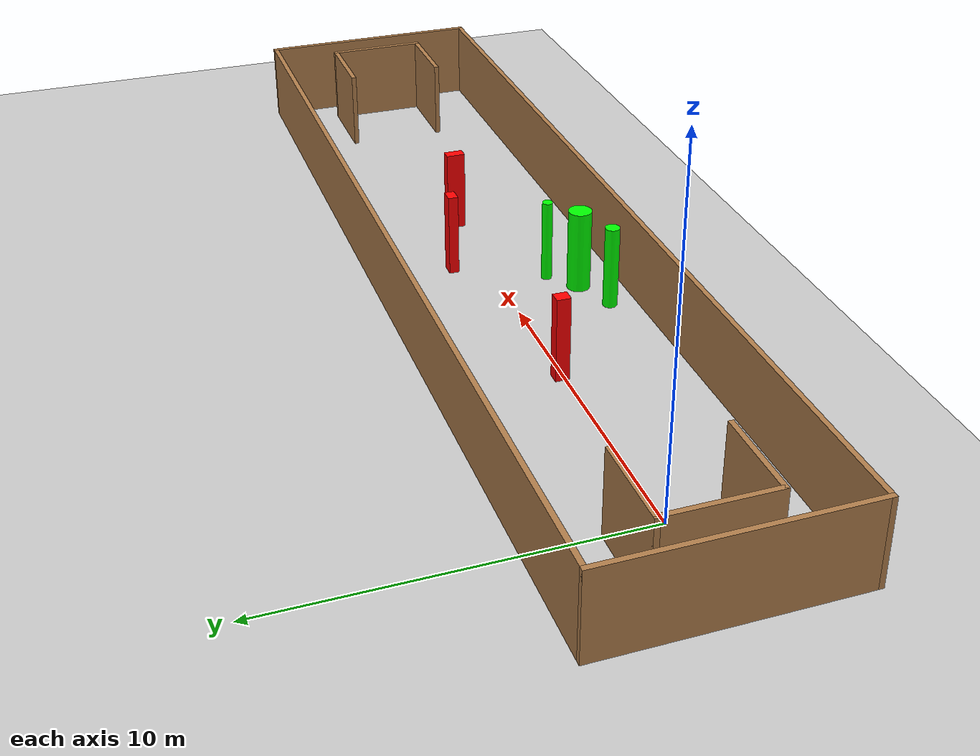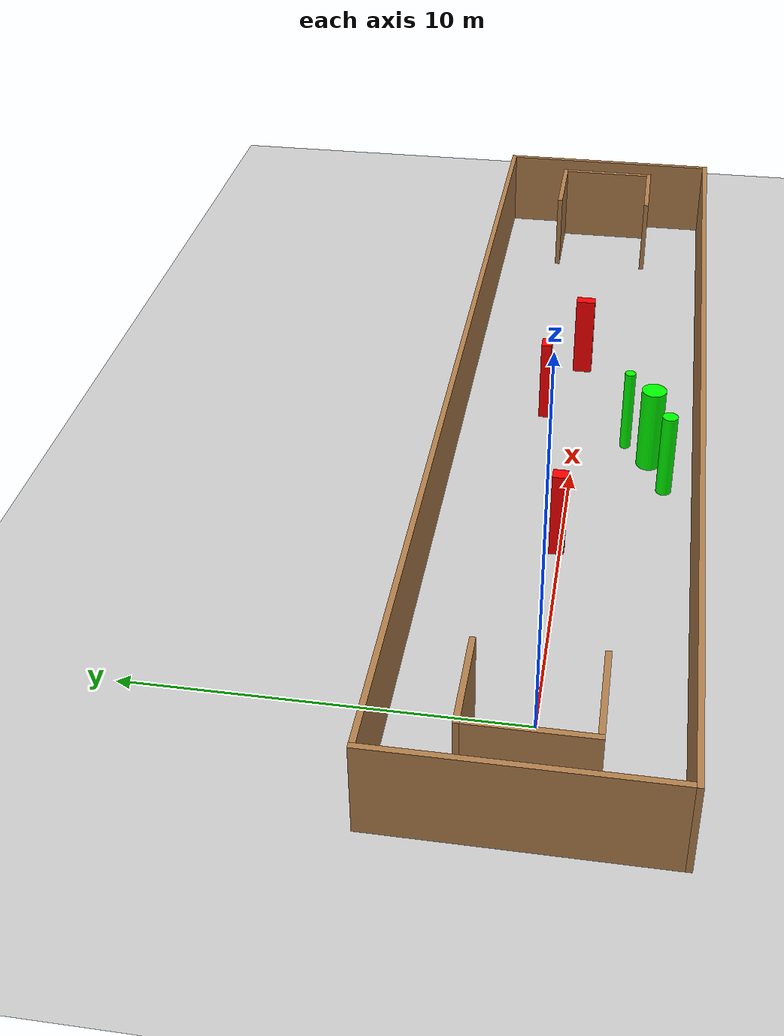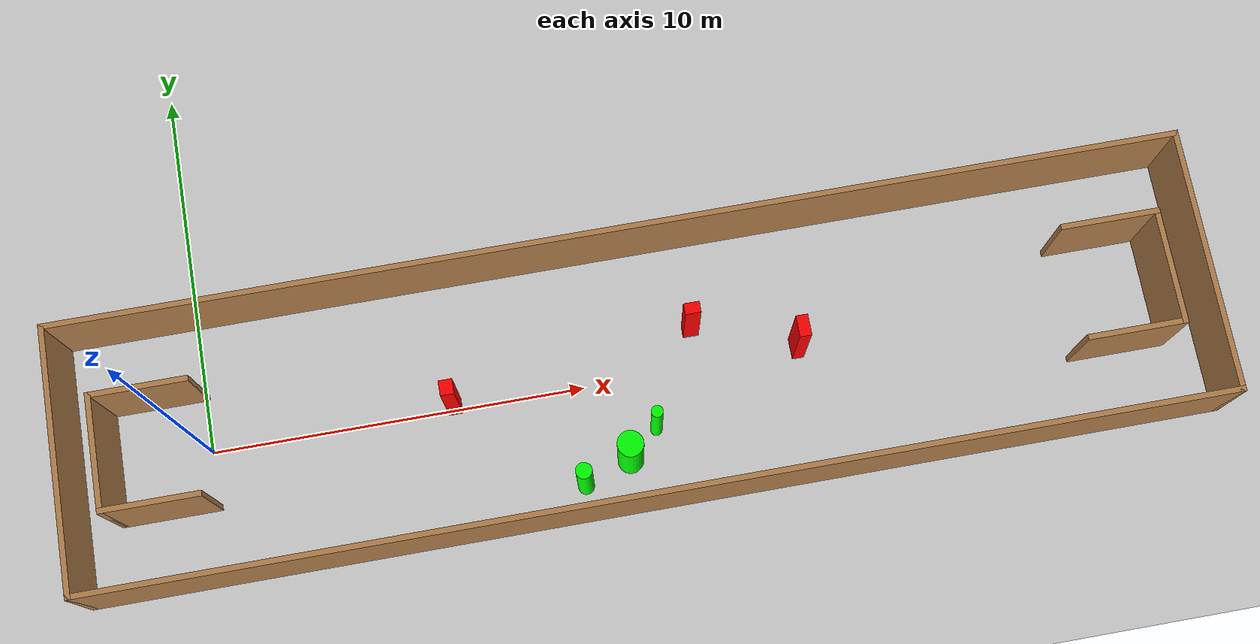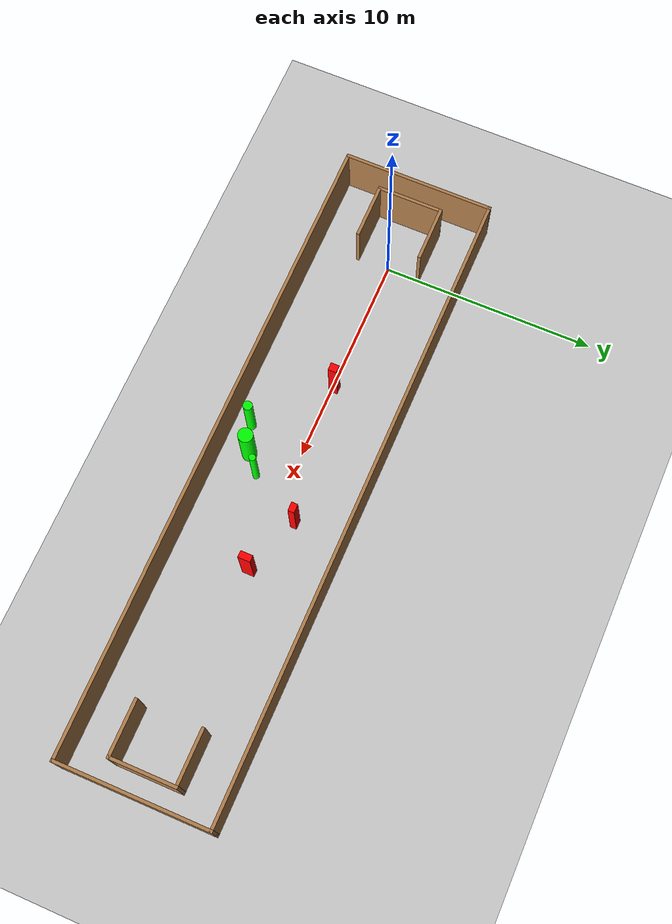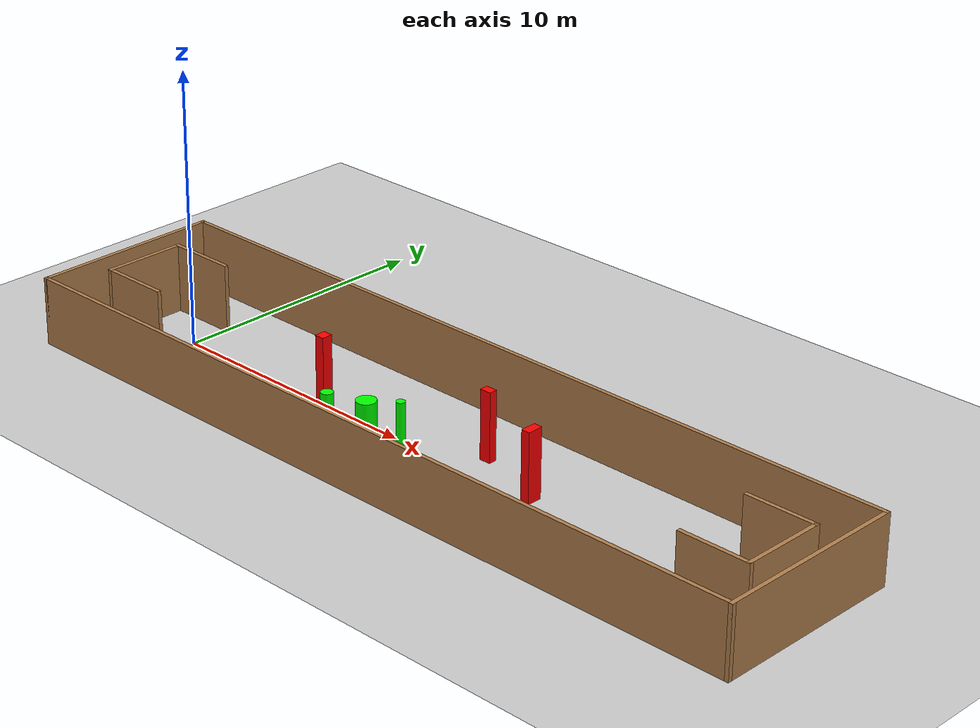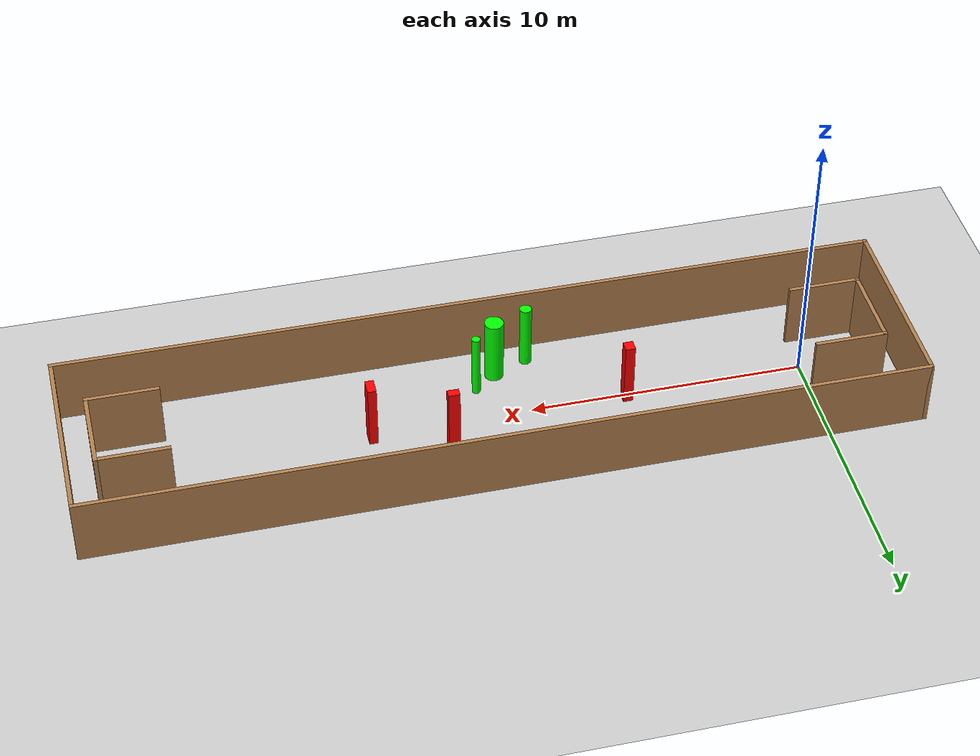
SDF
<sdf version="1.7">
 <world name="default">
  <light name="sun" type="directional">
   <pose>0 0 10 0 -0 0</pose>
   <diffuse>0.8 0.8 0.8 1</diffuse>
   <specular>0.2 0.2 0.2 1</specular>
   <attenuation>
    <range>1000</range>
    <constant>0.9</constant>
    <linear>0.01</linear>
    <quadratic>0.001</quadratic>
   </attenuation>
   <direction>-0.5 0.1 -0.9</direction>
   <spot><inner_angle>0</inner_angle><outer_angle>0</outer_angle><falloff>0</falloff></spot>
  </light>
  <model name="ground_plane">
   <static>1</static>
   <link name="link">
    <collision name="collision">
     <geometry><plane><normal>0 0 1</normal><size>100 100</size></plane></geometry>
     <surface>
      <contact><collide_bitmask>65535</collide_bitmask></contact>
      <friction><ode><mu>100</mu><mu2>50</mu2></ode></friction>
     </surface>
    </collision>
    <visual name="visual">
     <cast_shadows>0</cast_shadows>
     <geometry><plane><normal>0 0 1</normal><size>100 100</size></plane></geometry>
     <material>
      <script><uri>file://media/materials/scripts/gazebo.material</uri><name>Gazebo/Grey</name></script>
     </material>
    </visual>
   </link>
  </model>
  <gravity>0 0 -9.8</gravity>
  <magnetic_field>6e-06 2.3e-05 -4.2e-05</magnetic_field>
  <atmosphere type="adiabatic"/>
  <physics type="ode">
   <max_step_size>0.001</max_step_size>
   <real_time_factor>1</real_time_factor>
   <real_time_update_rate>1000</real_time_update_rate>
  </physics>
  <scene><ambient>0.4 0.4 0.4 1</ambient><background>0.7 0.7 0.7 1</background><shadows>1</shadows></scene>
  <spherical_coordinates>
   <surface_model>EARTH_WGS84</surface_model>
   <latitude_deg>0</latitude_deg>
   <longitude_deg>0</longitude_deg>
   <elevation>0</elevation>
   <heading_deg>0</heading_deg>
  </spherical_coordinates>
  <model name="my_base_walls">
   <link name="Wall_0">
    <collision name="Wall_0_Collision">
     <geometry><box><size>7.15 0.15 2.5</size></box></geometry>
     <pose>0 0 1.25 0 -0 0</pose>
    </collision>
    <visual name="Wall_0_Visual">
     <pose>0 0 1.25 0 -0 0</pose>
     <geometry><box><size>7.15 0.15 2.5</size></box></geometry>
     <material>
      <script><uri>file://media/materials/scripts/gazebo.material</uri><name>Gazebo/Wood</name></script>
      <ambient>1 1 1 1</ambient>
     </material>
     <meta><layer>0</layer></meta>
    </visual>
    <pose>-15 0 0 0 -0 1.5708</pose>
   </link>
   <link name="Wall_10">
    <collision name="Wall_10_Collision">
     <geometry><box><size>2.65 0.15 2.5</size></box></geometry>
     <pose>0 0 1.25 0 -0 0</pose>
    </collision>
    <visual name="Wall_10_Visual">
     <pose>0 0 1.25 0 -0 0</pose>
     <geometry><box><size>2.65 0.15 2.5</size></box></geometry>
     <material>
      <script><uri>file://media/materials/scripts/gazebo.material</uri><name>Gazebo/Wood</name></script>
      <ambient>1 1 1 1</ambient>
     </material>
     <meta><layer>0</layer></meta>
    </visual>
    <pose>-12.75 -1.5 0 0 -0 0</pose>
   </link>
   <link name="Wall_12">
    <collision name="Wall_12_Collision">
     <geometry><box><size>2.65 0.15 2.5</size></box></geometry>
     <pose>0 0 1.25 0 -0 0</pose>
    </collision>
    <visual name="Wall_12_Visual">
     <pose>0 0 1.25 0 -0 0</pose>
     <geometry><box><size>2.65 0.15 2.5</size></box></geometry>
     <material>
      <script><uri>file://media/materials/scripts/gazebo.material</uri><name>Gazebo/Wood</name></script>
      <ambient>1 1 1 1</ambient>
     </material>
     <meta><layer>0</layer></meta>
    </visual>
    <pose>-12.75 1.5 0 0 -0 0</pose>
   </link>
   <link name="Wall_14">
    <collision name="Wall_14_Collision">
     <geometry><box><size>3.15 0.15 2.5</size></box></geometry>
     <pose>0 0 1.25 0 -0 0</pose>
    </collision>
    <visual name="Wall_14_Visual">
     <pose>0 0 1.25 0 -0 0</pose>
     <geometry><box><size>3.15 0.15 2.5</size></box></geometry>
     <material>
      <script><uri>file://media/materials/scripts/gazebo.material</uri><name>Gazebo/Wood</name></script>
      <ambient>1 1 1 1</ambient>
     </material>
     <meta><layer>0</layer></meta>
    </visual>
    <pose>14 0 0 0 -0 -1.5708</pose>
   </link>
   <link name="Wall_15">
    <collision name="Wall_15_Collision">
     <geometry><box><size>2.65 0.15 2.5</size></box></geometry>
     <pose>0 0 1.25 0 -0 0</pose>
    </collision>
    <visual name="Wall_15_Visual">
     <pose>0 0 1.25 0 -0 0</pose>
     <geometry><box><size>2.65 0.15 2.5</size></box></geometry>
     <material>
      <script><uri>file://media/materials/scripts/gazebo.material</uri><name>Gazebo/Wood</name></script>
      <ambient>1 1 1 1</ambient>
     </material>
     <meta><layer>0</layer></meta>
    </visual>
    <pose>12.75 -1.5 0 0 -0 3.14159</pose>
   </link>
   <link name="Wall_17">
    <collision name="Wall_17_Collision">
     <geometry><box><size>2.65 0.15 2.5</size></box></geometry>
     <pose>0 0 1.25 0 -0 0</pose>
    </collision>
    <visual name="Wall_17_Visual">
     <pose>0 0 1.25 0 -0 0</pose>
     <geometry><box><size>2.65 0.15 2.5</size></box></geometry>
     <material>
      <script><uri>file://media/materials/scripts/gazebo.material</uri><name>Gazebo/Wood</name></script>
      <ambient>1 1 1 1</ambient>
     </material>
     <meta><layer>0</layer></meta>
    </visual>
    <pose>12.75 1.5 0 0 -0 3.14159</pose>
   </link>
   <link name="Wall_2">
    <collision name="Wall_2_Collision">
     <geometry><box><size>30.15 0.15 2.5</size></box></geometry>
     <pose>0 0 1.25 0 -0 0</pose>
    </collision>
    <visual name="Wall_2_Visual">
     <pose>0 0 1.25 0 -0 0</pose>
     <geometry><box><size>30.15 0.15 2.5</size></box></geometry>
     <material>
      <script><uri>file://media/materials/scripts/gazebo.material</uri><name>Gazebo/Wood</name></script>
      <ambient>1 1 1 1</ambient>
     </material>
     <meta><layer>0</layer></meta>
    </visual>
    <pose>-0 -3.5 0 0 -0 0</pose>
   </link>
   <link name="Wall_4">
    <collision name="Wall_4_Collision">
     <geometry><box><size>30.15 0.15 2.5</size></box></geometry>
     <pose>0 0 1.25 0 -0 0</pose>
    </collision>
    <visual name="Wall_4_Visual">
     <pose>0 0 1.25 0 -0 0</pose>
     <geometry><box><size>30.15 0.15 2.5</size></box></geometry>
     <material>
      <script><uri>file://media/materials/scripts/gazebo.material</uri><name>Gazebo/Wood</name></script>
      <ambient>1 1 1 1</ambient>
     </material>
     <meta><layer>0</layer></meta>
    </visual>
    <pose>-0 3.5 0 0 -0 0</pose>
   </link>
   <link name="Wall_6">
    <collision name="Wall_6_Collision">
     <geometry><box><size>7.15 0.15 2.5</size></box></geometry>
     <pose>0 0 1.25 0 -0 0</pose>
    </collision>
    <visual name="Wall_6_Visual">
     <pose>0 0 1.25 0 -0 0</pose>
     <geometry><box><size>7.15 0.15 2.5</size></box></geometry>
     <material>
      <script><uri>file://media/materials/scripts/gazebo.material</uri><name>Gazebo/Wood</name></script>
      <ambient>1 1 1 1</ambient>
     </material>
     <meta><layer>0</layer></meta>
    </visual>
    <pose>15 0 0 0 -0 -1.5708</pose>
   </link>
   <link name="Wall_9">
    <collision name="Wall_9_Collision">
     <geometry><box><size>3.15 0.15 2.5</size></box></geometry>
     <pose>0 0 1.25 0 -0 0</pose>
    </collision>
    <visual name="Wall_9_Visual">
     <pose>0 0 1.25 0 -0 0</pose>
     <geometry><box><size>3.15 0.15 2.5</size></box></geometry>
     <material>
      <script><uri>file://media/materials/scripts/gazebo.material</uri><name>Gazebo/Wood</name></script>
      <ambient>1 1 1 1</ambient>
     </material>
     <meta><layer>0</layer></meta>
    </visual>
    <pose>-14 0 0 0 -0 -1.5708</pose>
   </link>
   <static>1</static>
   <pose>11.5 0 0 0 -0 0</pose>
  </model>
  <model name="cylinder1">
   <static>1</static>
   <link name="link">
    <inertial>
     <mass>1</mass>
     <inertia><ixx>0.5</ixx><ixy>0</ixy><ixz>0</ixz><iyy>0.5</iyy><iyz>0</iyz><izz>1</izz></inertia>
    </inertial>
    <collision name="collision">
     <geometry><cylinder><radius>0.1555083581223472</radius><length>2.5</length></cylinder></geometry>
    </collision>
    <visual name="visual">
     <geometry><cylinder><radius>0.1555083581223472</radius><length>2.5</length></cylinder></geometry>
     <material>
      <ambient>0 1 0 1</ambient>
      <diffuse>0 1 0 1</diffuse>
      <specular>0.1 0.1 0.1 1</specular>
      <emissive>0 0 0 0</emissive>
     </material>
    </visual>
   </link>
   <pose>11.703161870055434 -1.4600628192915206 1.25 0 0 0</pose>
  </model>
  <model name="cylinder2">
   <static>1</static>
   <link name="link">
    <inertial>
     <mass>1</mass>
     <inertia><ixx>0.5</ixx><ixy>0</ixy><ixz>0</ixz><iyy>0.5</iyy><iyz>0</iyz><izz>1</izz></inertia>
    </inertial>
    <collision name="collision">
     <geometry><cylinder><radius>0.21541518213264366</radius><length>2.5</length></cylinder></geometry>
    </collision>
    <visual name="visual">
     <geometry><cylinder><radius>0.21541518213264366</radius><length>2.5</length></cylinder></geometry>
     <material>
      <ambient>0 1 0 1</ambient>
      <diffuse>0 1 0 1</diffuse>
      <specular>0.1 0.1 0.1 1</specular>
      <emissive>0 0 0 0</emissive>
     </material>
    </visual>
   </link>
   <pose>9.612312476654314 -2.6322014289678792 1.25 0 0 0</pose>
  </model>
  <model name="cylinder3">
   <static>1</static>
   <link name="link">
    <inertial>
     <mass>1</mass>
     <inertia><ixx>0.5</ixx><ixy>0</ixy><ixz>0</ixz><iyy>0.5</iyy><iyz>0</iyz><izz>1</izz></inertia>
    </inertial>
    <collision name="collision">
     <geometry><cylinder><radius>0.34563805901356526</radius><length>2.5</length></cylinder></geometry>
    </collision>
    <visual name="visual">
     <geometry><cylinder><radius>0.34563805901356526</radius><length>2.5</length></cylinder></geometry>
     <material>
      <ambient>0 1 0 1</ambient>
      <diffuse>0 1 0 1</diffuse>
      <specular>0.1 0.1 0.1 1</specular>
      <emissive>0 0 0 0</emissive>
     </material>
    </visual>
   </link>
   <pose>10.888665766624413 -2.157957797737282 1.25 0 0 0</pose>
  </model>
  <model name="box1">
   <static>1</static>
   <link name="link">
    <inertial>
     <mass>1</mass>
     <inertia><ixx>0.083</ixx><ixy>0</ixy><ixz>0</ixz><iyy>0.083</iyy><iyz>0</iyz><izz>0.083</izz></inertia>
    </inertial>
    <collision name="collision">
     <geometry><box><size>0.4184040474940627 0.29380184921103225 2.5</size></box></geometry>
    </collision>
    <visual name="visual">
     <geometry><box><size>0.4184040474940627 0.29380184921103225 2.5</size></box></geometry>
     <material>
      <ambient>1 0 0 1</ambient>
      <diffuse>1 0 0 1</diffuse>
      <specular>0.1 0.1 0.1 1</specular>
      <emissive>0 0 0 0</emissive>
     </material>
    </visual>
    <sensor name="my_contact" type="contact">
     <contact><collision>box_collision</collision><topic>__default_topic__</topic></contact>
    </sensor>
   </link>
   <pose>13.07232204934447 1.0491429419884923 1.25 0 0 0</pose>
  </model>
  <model name="box2">
   <static>1</static>
   <link name="link">
    <inertial>
     <mass>1</mass>
     <inertia><ixx>0.083</ixx><ixy>0</ixy><ixz>0</ixz><iyy>0.083</iyy><iyz>0</iyz><izz>0.083</izz></inertia>
    </inertial>
    <collision name="collision">
     <geometry><box><size>0.3147815808892275 0.567428312127768 2.5</size></box></geometry>
    </collision>
    <visual name="visual">
     <geometry><box><size>0.3147815808892275 0.567428312127768 2.5</size></box></geometry>
     <material>
      <ambient>1 0 0 1</ambient>
      <diffuse>1 0 0 1</diffuse>
      <specular>0.1 0.1 0.1 1</specular>
      <emissive>0 0 0 0</emissive>
     </material>
    </visual>
    <sensor name="my_contact" type="contact">
     <contact><collision>box_collision</collision><topic>__default_topic__</topic></contact>
    </sensor>
   </link>
   <pose>15.808055549049088 0.08943201328777795 1.25 0 0 0</pose>
  </model>
  <model name="box3">
   <static>1</static>
   <link name="link">
    <inertial>
     <mass>1</mass>
     <inertia><ixx>0.083</ixx><ixy>0</ixy><ixz>0</ixz><iyy>0.083</iyy><iyz>0</iyz><izz>0.083</izz></inertia>
    </inertial>
    <collision name="collision">
     <geometry><box><size>0.35864026175597924 0.4015436503523906 2.5</size></box></geometry>
    </collision>
    <visual name="visual">
     <geometry><box><size>0.35864026175597924 0.4015436503523906 2.5</size></box></geometry>
     <material>
      <ambient>1 0 0 1</ambient>
      <diffuse>1 0 0 1</diffuse>
      <specular>0.1 0.1 0.1 1</specular>
      <emissive>0 0 0 0</emissive>
     </material>
    </visual>
    <sensor name="my_contact" type="contact">
     <contact><collision>box_collision</collision><topic>__default_topic__</topic></contact>
    </sensor>
   </link>
   <pose>6.516003342634704 0.09995869313252603 1.25 0 0 0</pose>
  </model>
 </world>
</sdf>
